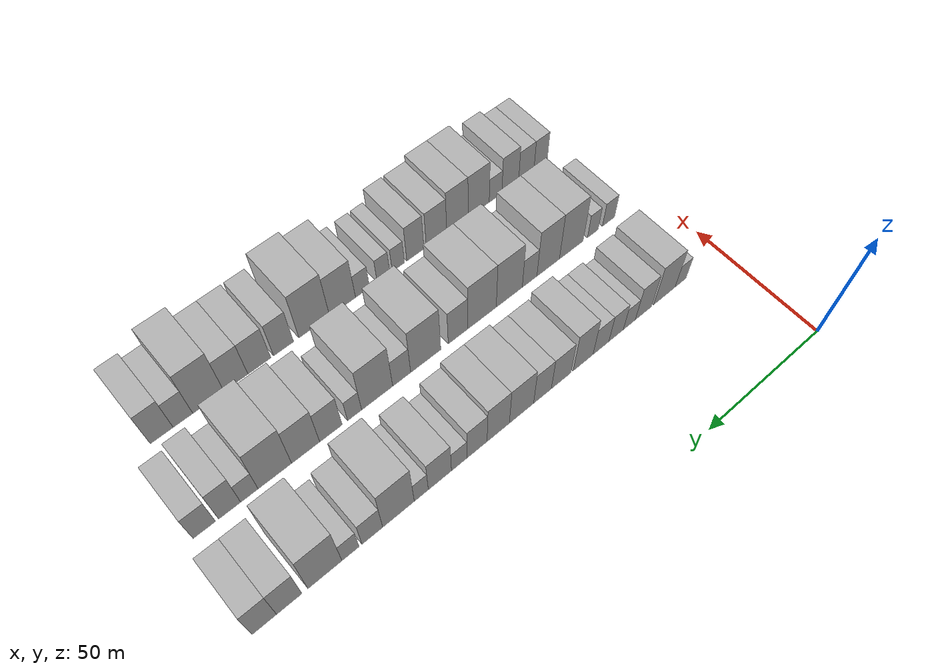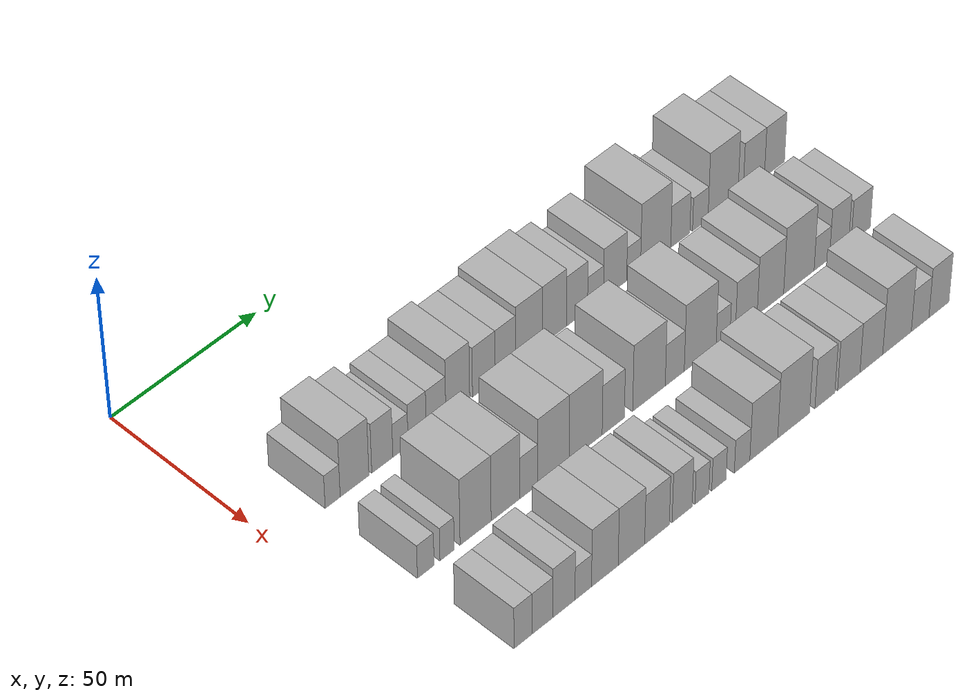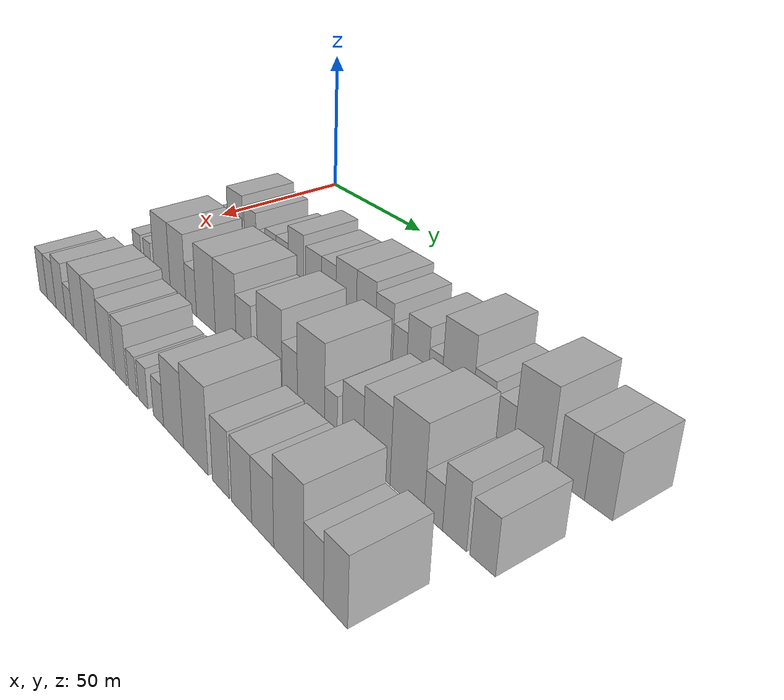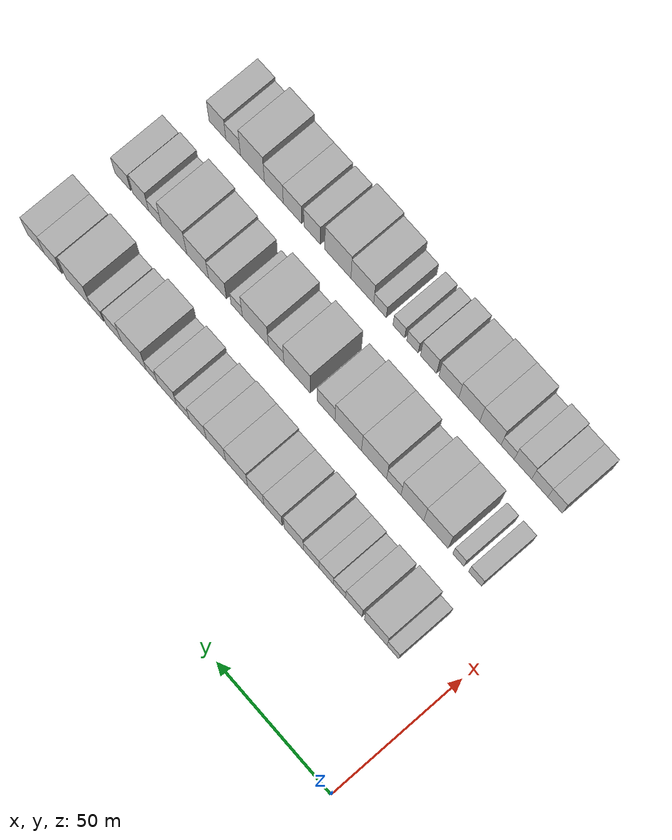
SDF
<sdf version="1.6">
 <world name="default">
  <model name="building_42">
   <static>1</static>
   <pose>50.0000 18.8597 0 0.000000 0.000000 0.000000</pose>
   <link name="link">
    <pose>0 0 6.00 0 0 0</pose>
    <collision name="collision"><geometry><box><size>20.0000 5.1306 12.0000</size></box></geometry></collision>
    <visual name="visual">
     <cast_shadows>0</cast_shadows>
     <geometry><box><size>20.0000 5.1306 12.0000</size></box></geometry>
     <material>
      <script>
       <uri>model://HANNAS_wall/materials/scripts</uri>
       <uri>model://HANNAS_wall/materials/textures</uri>
       <name>vrc/HANNAS_wall</name>
      </script>
     </material>
    </visual>
   </link>
  </model>
  <model name="building_43">
   <static>1</static>
   <pose>50.0000 26.3520 0 0.000000 0.000000 0.000000</pose>
   <link name="link">
    <pose>0 0 10.50 0 0 0</pose>
    <collision name="collision"><geometry><box><size>20.0000 9.8539 21.0000</size></box></geometry></collision>
    <visual name="visual">
     <cast_shadows>0</cast_shadows>
     <geometry><box><size>20.0000 9.8539 21.0000</size></box></geometry>
     <material>
      <script>
       <uri>model://HANNAS_wall/materials/scripts</uri>
       <uri>model://HANNAS_wall/materials/textures</uri>
       <name>vrc/HANNAS_wall</name>
      </script>
     </material>
    </visual>
   </link>
  </model>
  <model name="building_44">
   <static>1</static>
   <pose>50.0000 35.9243 0 0.000000 0.000000 0.000000</pose>
   <link name="link">
    <pose>0 0 9.00 0 0 0</pose>
    <collision name="collision"><geometry><box><size>20.0000 7.2907 18.0000</size></box></geometry></collision>
    <visual name="visual">
     <cast_shadows>0</cast_shadows>
     <geometry><box><size>20.0000 7.2907 18.0000</size></box></geometry>
     <material>
      <script>
       <uri>model://HANNAS_wall/materials/scripts</uri>
       <uri>model://HANNAS_wall/materials/textures</uri>
       <name>vrc/HANNAS_wall</name>
      </script>
     </material>
    </visual>
   </link>
  </model>
  <model name="building_45">
   <static>1</static>
   <pose>50.0000 42.2294 0 0.000000 0.000000 0.000000</pose>
   <link name="link">
    <pose>0 0 6.00 0 0 0</pose>
    <collision name="collision"><geometry><box><size>20.0000 5.3195 12.0000</size></box></geometry></collision>
    <visual name="visual">
     <cast_shadows>0</cast_shadows>
     <geometry><box><size>20.0000 5.3195 12.0000</size></box></geometry>
     <material>
      <script>
       <uri>model://HANNAS_wall/materials/scripts</uri>
       <uri>model://HANNAS_wall/materials/textures</uri>
       <name>vrc/HANNAS_wall</name>
      </script>
     </material>
    </visual>
   </link>
  </model>
  <model name="building_46">
   <static>1</static>
   <pose>50.0000 48.0689 0 0.000000 0.000000 0.000000</pose>
   <link name="link">
    <pose>0 0 7.50 0 0 0</pose>
    <collision name="collision"><geometry><box><size>20.0000 6.3595 15.0000</size></box></geometry></collision>
    <visual name="visual">
     <cast_shadows>0</cast_shadows>
     <geometry><box><size>20.0000 6.3595 15.0000</size></box></geometry>
     <material>
      <script>
       <uri>model://HANNAS_wall/materials/scripts</uri>
       <uri>model://HANNAS_wall/materials/textures</uri>
       <name>vrc/HANNAS_wall</name>
      </script>
     </material>
    </visual>
   </link>
  </model>
  <model name="building_47">
   <static>1</static>
   <pose>50.0000 54.6852 0 0.000000 0.000000 0.000000</pose>
   <link name="link">
    <pose>0 0 7.50 0 0 0</pose>
    <collision name="collision"><geometry><box><size>20.0000 6.8732 15.0000</size></box></geometry></collision>
    <visual name="visual">
     <cast_shadows>0</cast_shadows>
     <geometry><box><size>20.0000 6.8732 15.0000</size></box></geometry>
     <material>
      <script>
       <uri>model://HANNAS_wall/materials/scripts</uri>
       <uri>model://HANNAS_wall/materials/textures</uri>
       <name>vrc/HANNAS_wall</name>
      </script>
     </material>
    </visual>
   </link>
  </model>
  <model name="building_48">
   <static>1</static>
   <pose>50.0000 62.3393 0 0.000000 0.000000 0.000000</pose>
   <link name="link">
    <pose>0 0 10.50 0 0 0</pose>
    <collision name="collision"><geometry><box><size>20.0000 8.4348 21.0000</size></box></geometry></collision>
    <visual name="visual">
     <cast_shadows>0</cast_shadows>
     <geometry><box><size>20.0000 8.4348 21.0000</size></box></geometry>
     <material>
      <script>
       <uri>model://HANNAS_wall/materials/scripts</uri>
       <uri>model://HANNAS_wall/materials/textures</uri>
       <name>vrc/HANNAS_wall</name>
      </script>
     </material>
    </visual>
   </link>
  </model>
  <model name="building_49">
   <static>1</static>
   <pose>50.0000 71.6197 0 0.000000 0.000000 0.000000</pose>
   <link name="link">
    <pose>0 0 9.00 0 0 0</pose>
    <collision name="collision"><geometry><box><size>20.0000 8.1261 18.0000</size></box></geometry></collision>
    <visual name="visual">
     <cast_shadows>0</cast_shadows>
     <geometry><box><size>20.0000 8.1261 18.0000</size></box></geometry>
     <material>
      <script>
       <uri>model://HANNAS_wall/materials/scripts</uri>
       <uri>model://HANNAS_wall/materials/textures</uri>
       <name>vrc/HANNAS_wall</name>
      </script>
     </material>
    </visual>
   </link>
  </model>
  <model name="building_50">
   <static>1</static>
   <pose>50.0000 79.3008 0 0.000000 0.000000 0.000000</pose>
   <link name="link">
    <pose>0 0 9.00 0 0 0</pose>
    <collision name="collision"><geometry><box><size>20.0000 7.2360 18.0000</size></box></geometry></collision>
    <visual name="visual">
     <cast_shadows>0</cast_shadows>
     <geometry><box><size>20.0000 7.2360 18.0000</size></box></geometry>
     <material>
      <script>
       <uri>model://HANNAS_wall/materials/scripts</uri>
       <uri>model://HANNAS_wall/materials/textures</uri>
       <name>vrc/HANNAS_wall</name>
      </script>
     </material>
    </visual>
   </link>
  </model>
  <model name="building_51">
   <static>1</static>
   <pose>50.0000 87.7873 0 0.000000 0.000000 0.000000</pose>
   <link name="link">
    <pose>0 0 10.50 0 0 0</pose>
    <collision name="collision"><geometry><box><size>20.0000 9.7369 21.0000</size></box></geometry></collision>
    <visual name="visual">
     <cast_shadows>0</cast_shadows>
     <geometry><box><size>20.0000 9.7369 21.0000</size></box></geometry>
     <material>
      <script>
       <uri>model://HANNAS_wall/materials/scripts</uri>
       <uri>model://HANNAS_wall/materials/textures</uri>
       <name>vrc/HANNAS_wall</name>
      </script>
     </material>
    </visual>
   </link>
  </model>
  <model name="building_52">
   <static>1</static>
   <pose>50.0000 97.0397 0 0.000000 0.000000 0.000000</pose>
   <link name="link">
    <pose>0 0 10.50 0 0 0</pose>
    <collision name="collision"><geometry><box><size>20.0000 8.7679 21.0000</size></box></geometry></collision>
    <visual name="visual">
     <cast_shadows>0</cast_shadows>
     <geometry><box><size>20.0000 8.7679 21.0000</size></box></geometry>
     <material>
      <script>
       <uri>model://HANNAS_wall/materials/scripts</uri>
       <uri>model://HANNAS_wall/materials/textures</uri>
       <name>vrc/HANNAS_wall</name>
      </script>
     </material>
    </visual>
   </link>
  </model>
  <model name="building_53">
   <static>1</static>
   <pose>50.0000 105.2868 0 0.000000 0.000000 0.000000</pose>
   <link name="link">
    <pose>0 0 9.00 0 0 0</pose>
    <collision name="collision"><geometry><box><size>20.0000 7.7263 18.0000</size></box></geometry></collision>
    <visual name="visual">
     <cast_shadows>0</cast_shadows>
     <geometry><box><size>20.0000 7.7263 18.0000</size></box></geometry>
     <material>
      <script>
       <uri>model://HANNAS_wall/materials/scripts</uri>
       <uri>model://HANNAS_wall/materials/textures</uri>
       <name>vrc/HANNAS_wall</name>
      </script>
     </material>
    </visual>
   </link>
  </model>
  <model name="building_54">
   <static>1</static>
   <pose>50.0000 112.0898 0 0.000000 0.000000 0.000000</pose>
   <link name="link">
    <pose>0 0 6.00 0 0 0</pose>
    <collision name="collision"><geometry><box><size>20.0000 5.8797 12.0000</size></box></geometry></collision>
    <visual name="visual">
     <cast_shadows>0</cast_shadows>
     <geometry><box><size>20.0000 5.8797 12.0000</size></box></geometry>
     <material>
      <script>
       <uri>model://HANNAS_wall/materials/scripts</uri>
       <uri>model://HANNAS_wall/materials/textures</uri>
       <name>vrc/HANNAS_wall</name>
      </script>
     </material>
    </visual>
   </link>
  </model>
  <model name="building_55">
   <static>1</static>
   <pose>50.0000 119.3344 0 0.000000 0.000000 0.000000</pose>
   <link name="link">
    <pose>0 0 9.00 0 0 0</pose>
    <collision name="collision"><geometry><box><size>20.0000 8.6094 18.0000</size></box></geometry></collision>
    <visual name="visual">
     <cast_shadows>0</cast_shadows>
     <geometry><box><size>20.0000 8.6094 18.0000</size></box></geometry>
     <material>
      <script>
       <uri>model://HANNAS_wall/materials/scripts</uri>
       <uri>model://HANNAS_wall/materials/textures</uri>
       <name>vrc/HANNAS_wall</name>
      </script>
     </material>
    </visual>
   </link>
  </model>
  <model name="building_56">
   <static>1</static>
   <pose>50.0000 126.2190 0 0.000000 0.000000 0.000000</pose>
   <link name="link">
    <pose>0 0 6.00 0 0 0</pose>
    <collision name="collision"><geometry><box><size>20.0000 5.1597 12.0000</size></box></geometry></collision>
    <visual name="visual">
     <cast_shadows>0</cast_shadows>
     <geometry><box><size>20.0000 5.1597 12.0000</size></box></geometry>
     <material>
      <script>
       <uri>model://HANNAS_wall/materials/scripts</uri>
       <uri>model://HANNAS_wall/materials/textures</uri>
       <name>vrc/HANNAS_wall</name>
      </script>
     </material>
    </visual>
   </link>
  </model>
  <model name="building_57">
   <static>1</static>
   <pose>50.0000 134.4704 0 0.000000 0.000000 0.000000</pose>
   <link name="link">
    <pose>0 0 12.00 0 0 0</pose>
    <collision name="collision"><geometry><box><size>20.0000 11.3432 24.0000</size></box></geometry></collision>
    <visual name="visual">
     <cast_shadows>0</cast_shadows>
     <geometry><box><size>20.0000 11.3432 24.0000</size></box></geometry>
     <material>
      <script>
       <uri>model://HANNAS_wall/materials/scripts</uri>
       <uri>model://HANNAS_wall/materials/textures</uri>
       <name>vrc/HANNAS_wall</name>
      </script>
     </material>
    </visual>
   </link>
  </model>
  <model name="building_58">
   <static>1</static>
   <pose>50.0000 143.7816 0 0.000000 0.000000 0.000000</pose>
   <link name="link">
    <pose>0 0 7.50 0 0 0</pose>
    <collision name="collision"><geometry><box><size>20.0000 7.2792 15.0000</size></box></geometry></collision>
    <visual name="visual">
     <cast_shadows>0</cast_shadows>
     <geometry><box><size>20.0000 7.2792 15.0000</size></box></geometry>
     <material>
      <script>
       <uri>model://HANNAS_wall/materials/scripts</uri>
       <uri>model://HANNAS_wall/materials/textures</uri>
       <name>vrc/HANNAS_wall</name>
      </script>
     </material>
    </visual>
   </link>
  </model>
  <model name="building_59">
   <static>1</static>
   <pose>50.0000 151.3763 0 0.000000 0.000000 0.000000</pose>
   <link name="link">
    <pose>0 0 6.00 0 0 0</pose>
    <collision name="collision"><geometry><box><size>20.0000 5.9102 12.0000</size></box></geometry></collision>
    <visual name="visual">
     <cast_shadows>0</cast_shadows>
     <geometry><box><size>20.0000 5.9102 12.0000</size></box></geometry>
     <material>
      <script>
       <uri>model://HANNAS_wall/materials/scripts</uri>
       <uri>model://HANNAS_wall/materials/textures</uri>
       <name>vrc/HANNAS_wall</name>
      </script>
     </material>
    </visual>
   </link>
  </model>
  <model name="building_60">
   <static>1</static>
   <pose>50.0000 160.0676 0 0.000000 0.000000 0.000000</pose>
   <link name="link">
    <pose>0 0 12.00 0 0 0</pose>
    <collision name="collision"><geometry><box><size>20.0000 11.4722 24.0000</size></box></geometry></collision>
    <visual name="visual">
     <cast_shadows>0</cast_shadows>
     <geometry><box><size>20.0000 11.4722 24.0000</size></box></geometry>
     <material>
      <script>
       <uri>model://HANNAS_wall/materials/scripts</uri>
       <uri>model://HANNAS_wall/materials/textures</uri>
       <name>vrc/HANNAS_wall</name>
      </script>
     </material>
    </visual>
   </link>
  </model>
  <model name="building_61">
   <static>1</static>
   <pose>50.0000 171.9407 0 0.000000 0.000000 0.000000</pose>
   <link name="link">
    <pose>0 0 9.00 0 0 0</pose>
    <collision name="collision"><geometry><box><size>20.0000 8.2742 18.0000</size></box></geometry></collision>
    <visual name="visual">
     <cast_shadows>0</cast_shadows>
     <geometry><box><size>20.0000 8.2742 18.0000</size></box></geometry>
     <material>
      <script>
       <uri>model://HANNAS_wall/materials/scripts</uri>
       <uri>model://HANNAS_wall/materials/textures</uri>
       <name>vrc/HANNAS_wall</name>
      </script>
     </material>
    </visual>
   </link>
  </model>
  <model name="building_62">
   <static>1</static>
   <pose>50.0000 179.9781 0 0.000000 0.000000 0.000000</pose>
   <link name="link">
    <pose>0 0 9.00 0 0 0</pose>
    <collision name="collision"><geometry><box><size>20.0000 7.8007 18.0000</size></box></geometry></collision>
    <visual name="visual">
     <cast_shadows>0</cast_shadows>
     <geometry><box><size>20.0000 7.8007 18.0000</size></box></geometry>
     <material>
      <script>
       <uri>model://HANNAS_wall/materials/scripts</uri>
       <uri>model://HANNAS_wall/materials/textures</uri>
       <name>vrc/HANNAS_wall</name>
      </script>
     </material>
    </visual>
   </link>
  </model>
  <model name="building_116">
   <static>1</static>
   <pose>82.0000 19.0780 0 0.000000 0.000000 0.000000</pose>
   <link name="link">
    <pose>0 0 6.00 0 0 0</pose>
    <collision name="collision"><geometry><box><size>20.0000 5.6921 12.0000</size></box></geometry></collision>
    <visual name="visual">
     <cast_shadows>0</cast_shadows>
     <geometry><box><size>20.0000 5.6921 12.0000</size></box></geometry>
     <material>
      <script>
       <uri>model://HANNAS_wall/materials/scripts</uri>
       <uri>model://HANNAS_wall/materials/textures</uri>
       <name>vrc/HANNAS_wall</name>
      </script>
     </material>
    </visual>
   </link>
  </model>
  <model name="building_117">
   <static>1</static>
   <pose>82.0000 26.3826 0 0.000000 0.000000 0.000000</pose>
   <link name="link">
    <pose>0 0 6.00 0 0 0</pose>
    <collision name="collision"><geometry><box><size>20.0000 4.9172 12.0000</size></box></geometry></collision>
    <visual name="visual">
     <cast_shadows>0</cast_shadows>
     <geometry><box><size>20.0000 4.9172 12.0000</size></box></geometry>
     <material>
      <script>
       <uri>model://HANNAS_wall/materials/scripts</uri>
       <uri>model://HANNAS_wall/materials/textures</uri>
       <name>vrc/HANNAS_wall</name>
      </script>
     </material>
    </visual>
   </link>
  </model>
  <model name="building_118">
   <static>1</static>
   <pose>82.0000 36.2172 0 0.000000 0.000000 0.000000</pose>
   <link name="link">
    <pose>0 0 12.00 0 0 0</pose>
    <collision name="collision"><geometry><box><size>20.0000 10.7519 24.0000</size></box></geometry></collision>
    <visual name="visual">
     <cast_shadows>0</cast_shadows>
     <geometry><box><size>20.0000 10.7519 24.0000</size></box></geometry>
     <material>
      <script>
       <uri>model://HANNAS_wall/materials/scripts</uri>
       <uri>model://HANNAS_wall/materials/textures</uri>
       <name>vrc/HANNAS_wall</name>
      </script>
     </material>
    </visual>
   </link>
  </model>
  <model name="building_119">
   <static>1</static>
   <pose>82.0000 46.5925 0 0.000000 0.000000 0.000000</pose>
   <link name="link">
    <pose>0 0 12.00 0 0 0</pose>
    <collision name="collision"><geometry><box><size>20.0000 9.9988 24.0000</size></box></geometry></collision>
    <visual name="visual">
     <cast_shadows>0</cast_shadows>
     <geometry><box><size>20.0000 9.9988 24.0000</size></box></geometry>
     <material>
      <script>
       <uri>model://HANNAS_wall/materials/scripts</uri>
       <uri>model://HANNAS_wall/materials/textures</uri>
       <name>vrc/HANNAS_wall</name>
      </script>
     </material>
    </visual>
   </link>
  </model>
  <model name="building_120">
   <static>1</static>
   <pose>82.0000 54.7730 0 0.000000 0.000000 0.000000</pose>
   <link name="link">
    <pose>0 0 7.50 0 0 0</pose>
    <collision name="collision"><geometry><box><size>20.0000 6.3622 15.0000</size></box></geometry></collision>
    <visual name="visual">
     <cast_shadows>0</cast_shadows>
     <geometry><box><size>20.0000 6.3622 15.0000</size></box></geometry>
     <material>
      <script>
       <uri>model://HANNAS_wall/materials/scripts</uri>
       <uri>model://HANNAS_wall/materials/textures</uri>
       <name>vrc/HANNAS_wall</name>
      </script>
     </material>
    </visual>
   </link>
  </model>
  <model name="building_121">
   <static>1</static>
   <pose>82.0000 63.5166 0 0.000000 0.000000 0.000000</pose>
   <link name="link">
    <pose>0 0 12.00 0 0 0</pose>
    <collision name="collision"><geometry><box><size>20.0000 11.1250 24.0000</size></box></geometry></collision>
    <visual name="visual">
     <cast_shadows>0</cast_shadows>
     <geometry><box><size>20.0000 11.1250 24.0000</size></box></geometry>
     <material>
      <script>
       <uri>model://HANNAS_wall/materials/scripts</uri>
       <uri>model://HANNAS_wall/materials/textures</uri>
       <name>vrc/HANNAS_wall</name>
      </script>
     </material>
    </visual>
   </link>
  </model>
  <model name="building_122">
   <static>1</static>
   <pose>82.0000 74.9775 0 0.000000 0.000000 0.000000</pose>
   <link name="link">
    <pose>0 0 12.00 0 0 0</pose>
    <collision name="collision"><geometry><box><size>20.0000 11.7968 24.0000</size></box></geometry></collision>
    <visual name="visual">
     <cast_shadows>0</cast_shadows>
     <geometry><box><size>20.0000 11.7968 24.0000</size></box></geometry>
     <material>
      <script>
       <uri>model://HANNAS_wall/materials/scripts</uri>
       <uri>model://HANNAS_wall/materials/textures</uri>
       <name>vrc/HANNAS_wall</name>
      </script>
     </material>
    </visual>
   </link>
  </model>
  <model name="building_123">
   <static>1</static>
   <pose>82.0000 84.8865 0 0.000000 0.000000 0.000000</pose>
   <link name="link">
    <pose>0 0 9.00 0 0 0</pose>
    <collision name="collision"><geometry><box><size>20.0000 8.0211 18.0000</size></box></geometry></collision>
    <visual name="visual">
     <cast_shadows>0</cast_shadows>
     <geometry><box><size>20.0000 8.0211 18.0000</size></box></geometry>
     <material>
      <script>
       <uri>model://HANNAS_wall/materials/scripts</uri>
       <uri>model://HANNAS_wall/materials/textures</uri>
       <name>vrc/HANNAS_wall</name>
      </script>
     </material>
    </visual>
   </link>
  </model>
  <model name="building_124">
   <static>1</static>
   <pose>82.0000 97.8478 0 0.000000 0.000000 0.000000</pose>
   <link name="link">
    <pose>0 0 12.00 0 0 0</pose>
    <collision name="collision"><geometry><box><size>20.0000 11.9016 24.0000</size></box></geometry></collision>
    <visual name="visual">
     <cast_shadows>0</cast_shadows>
     <geometry><box><size>20.0000 11.9016 24.0000</size></box></geometry>
     <material>
      <script>
       <uri>model://HANNAS_wall/materials/scripts</uri>
       <uri>model://HANNAS_wall/materials/textures</uri>
       <name>vrc/HANNAS_wall</name>
      </script>
     </material>
    </visual>
   </link>
  </model>
  <model name="building_125">
   <static>1</static>
   <pose>82.0000 107.2897 0 0.000000 0.000000 0.000000</pose>
   <link name="link">
    <pose>0 0 7.50 0 0 0</pose>
    <collision name="collision"><geometry><box><size>20.0000 6.9824 15.0000</size></box></geometry></collision>
    <visual name="visual">
     <cast_shadows>0</cast_shadows>
     <geometry><box><size>20.0000 6.9824 15.0000</size></box></geometry>
     <material>
      <script>
       <uri>model://HANNAS_wall/materials/scripts</uri>
       <uri>model://HANNAS_wall/materials/textures</uri>
       <name>vrc/HANNAS_wall</name>
      </script>
     </material>
    </visual>
   </link>
  </model>
  <model name="building_126">
   <static>1</static>
   <pose>82.0000 116.6873 0 0.000000 0.000000 0.000000</pose>
   <link name="link">
    <pose>0 0 12.00 0 0 0</pose>
    <collision name="collision"><geometry><box><size>20.0000 11.8128 24.0000</size></box></geometry></collision>
    <visual name="visual">
     <cast_shadows>0</cast_shadows>
     <geometry><box><size>20.0000 11.8128 24.0000</size></box></geometry>
     <material>
      <script>
       <uri>model://HANNAS_wall/materials/scripts</uri>
       <uri>model://HANNAS_wall/materials/textures</uri>
       <name>vrc/HANNAS_wall</name>
      </script>
     </material>
    </visual>
   </link>
  </model>
  <model name="building_127">
   <static>1</static>
   <pose>82.0000 125.2043 0 0.000000 0.000000 0.000000</pose>
   <link name="link">
    <pose>0 0 6.00 0 0 0</pose>
    <collision name="collision"><geometry><box><size>20.0000 5.2211 12.0000</size></box></geometry></collision>
    <visual name="visual">
     <cast_shadows>0</cast_shadows>
     <geometry><box><size>20.0000 5.2211 12.0000</size></box></geometry>
     <material>
      <script>
       <uri>model://HANNAS_wall/materials/scripts</uri>
       <uri>model://HANNAS_wall/materials/textures</uri>
       <name>vrc/HANNAS_wall</name>
      </script>
     </material>
    </visual>
   </link>
  </model>
  <model name="building_128">
   <static>1</static>
   <pose>82.0000 133.9127 0 0.000000 0.000000 0.000000</pose>
   <link name="link">
    <pose>0 0 9.00 0 0 0</pose>
    <collision name="collision"><geometry><box><size>20.0000 8.1958 18.0000</size></box></geometry></collision>
    <visual name="visual">
     <cast_shadows>0</cast_shadows>
     <geometry><box><size>20.0000 8.1958 18.0000</size></box></geometry>
     <material>
      <script>
       <uri>model://HANNAS_wall/materials/scripts</uri>
       <uri>model://HANNAS_wall/materials/textures</uri>
       <name>vrc/HANNAS_wall</name>
      </script>
     </material>
    </visual>
   </link>
  </model>
  <model name="building_129">
   <static>1</static>
   <pose>82.0000 143.0193 0 0.000000 0.000000 0.000000</pose>
   <link name="link">
    <pose>0 0 10.50 0 0 0</pose>
    <collision name="collision"><geometry><box><size>20.0000 10.0174 21.0000</size></box></geometry></collision>
    <visual name="visual">
     <cast_shadows>0</cast_shadows>
     <geometry><box><size>20.0000 10.0174 21.0000</size></box></geometry>
     <material>
      <script>
       <uri>model://HANNAS_wall/materials/scripts</uri>
       <uri>model://HANNAS_wall/materials/textures</uri>
       <name>vrc/HANNAS_wall</name>
      </script>
     </material>
    </visual>
   </link>
  </model>
  <model name="building_130">
   <static>1</static>
   <pose>82.0000 153.8669 0 0.000000 0.000000 0.000000</pose>
   <link name="link">
    <pose>0 0 12.00 0 0 0</pose>
    <collision name="collision"><geometry><box><size>20.0000 11.6779 24.0000</size></box></geometry></collision>
    <visual name="visual">
     <cast_shadows>0</cast_shadows>
     <geometry><box><size>20.0000 11.6779 24.0000</size></box></geometry>
     <material>
      <script>
       <uri>model://HANNAS_wall/materials/scripts</uri>
       <uri>model://HANNAS_wall/materials/textures</uri>
       <name>vrc/HANNAS_wall</name>
      </script>
     </material>
    </visual>
   </link>
  </model>
  <model name="building_131">
   <static>1</static>
   <pose>82.0000 162.6770 0 0.000000 0.000000 0.000000</pose>
   <link name="link">
    <pose>0 0 6.00 0 0 0</pose>
    <collision name="collision"><geometry><box><size>20.0000 5.9422 12.0000</size></box></geometry></collision>
    <visual name="visual">
     <cast_shadows>0</cast_shadows>
     <geometry><box><size>20.0000 5.9422 12.0000</size></box></geometry>
     <material>
      <script>
       <uri>model://HANNAS_wall/materials/scripts</uri>
       <uri>model://HANNAS_wall/materials/textures</uri>
       <name>vrc/HANNAS_wall</name>
      </script>
     </material>
    </visual>
   </link>
  </model>
  <model name="building_132">
   <static>1</static>
   <pose>82.0000 169.3499 0 0.000000 0.000000 0.000000</pose>
   <link name="link">
    <pose>0 0 9.00 0 0 0</pose>
    <collision name="collision"><geometry><box><size>20.0000 7.4037 18.0000</size></box></geometry></collision>
    <visual name="visual">
     <cast_shadows>0</cast_shadows>
     <geometry><box><size>20.0000 7.4037 18.0000</size></box></geometry>
     <material>
      <script>
       <uri>model://HANNAS_wall/materials/scripts</uri>
       <uri>model://HANNAS_wall/materials/textures</uri>
       <name>vrc/HANNAS_wall</name>
      </script>
     </material>
    </visual>
   </link>
  </model>
  <model name="building_133">
   <static>1</static>
   <pose>82.0000 177.7515 0 0.000000 0.000000 0.000000</pose>
   <link name="link">
    <pose>0 0 7.50 0 0 0</pose>
    <collision name="collision"><geometry><box><size>20.0000 7.3995 15.0000</size></box></geometry></collision>
    <visual name="visual">
     <cast_shadows>0</cast_shadows>
     <geometry><box><size>20.0000 7.3995 15.0000</size></box></geometry>
     <material>
      <script>
       <uri>model://HANNAS_wall/materials/scripts</uri>
       <uri>model://HANNAS_wall/materials/textures</uri>
       <name>vrc/HANNAS_wall</name>
      </script>
     </material>
    </visual>
   </link>
  </model>
  <model name="building_193">
   <static>1</static>
   <pose>114.0000 19.8778 0 0.000000 0.000000 0.000000</pose>
   <link name="link">
    <pose>0 0 7.50 0 0 0</pose>
    <collision name="collision"><geometry><box><size>20.0000 6.2368 15.0000</size></box></geometry></collision>
    <visual name="visual">
     <cast_shadows>0</cast_shadows>
     <geometry><box><size>20.0000 6.2368 15.0000</size></box></geometry>
     <material>
      <script>
       <uri>model://HANNAS_wall/materials/scripts</uri>
       <uri>model://HANNAS_wall/materials/textures</uri>
       <name>vrc/HANNAS_wall</name>
      </script>
     </material>
    </visual>
   </link>
  </model>
  <model name="building_194">
   <static>1</static>
   <pose>114.0000 26.5469 0 0.000000 0.000000 0.000000</pose>
   <link name="link">
    <pose>0 0 7.50 0 0 0</pose>
    <collision name="collision"><geometry><box><size>20.0000 7.1014 15.0000</size></box></geometry></collision>
    <visual name="visual">
     <cast_shadows>0</cast_shadows>
     <geometry><box><size>20.0000 7.1014 15.0000</size></box></geometry>
     <material>
      <script>
       <uri>model://HANNAS_wall/materials/scripts</uri>
       <uri>model://HANNAS_wall/materials/textures</uri>
       <name>vrc/HANNAS_wall</name>
      </script>
     </material>
    </visual>
   </link>
  </model>
  <model name="building_195">
   <static>1</static>
   <pose>114.0000 33.9251 0 0.000000 0.000000 0.000000</pose>
   <link name="link">
    <pose>0 0 9.00 0 0 0</pose>
    <collision name="collision"><geometry><box><size>20.0000 7.6549 18.0000</size></box></geometry></collision>
    <visual name="visual">
     <cast_shadows>0</cast_shadows>
     <geometry><box><size>20.0000 7.6549 18.0000</size></box></geometry>
     <material>
      <script>
       <uri>model://HANNAS_wall/materials/scripts</uri>
       <uri>model://HANNAS_wall/materials/textures</uri>
       <name>vrc/HANNAS_wall</name>
      </script>
     </material>
    </visual>
   </link>
  </model>
  <model name="building_196">
   <static>1</static>
   <pose>114.0000 40.6221 0 0.000000 0.000000 0.000000</pose>
   <link name="link">
    <pose>0 0 6.00 0 0 0</pose>
    <collision name="collision"><geometry><box><size>20.0000 5.7391 12.0000</size></box></geometry></collision>
    <visual name="visual">
     <cast_shadows>0</cast_shadows>
     <geometry><box><size>20.0000 5.7391 12.0000</size></box></geometry>
     <material>
      <script>
       <uri>model://HANNAS_wall/materials/scripts</uri>
       <uri>model://HANNAS_wall/materials/textures</uri>
       <name>vrc/HANNAS_wall</name>
      </script>
     </material>
    </visual>
   </link>
  </model>
  <model name="building_197">
   <static>1</static>
   <pose>114.0000 48.1620 0 0.000000 0.000000 0.000000</pose>
   <link name="link">
    <pose>0 0 10.50 0 0 0</pose>
    <collision name="collision"><geometry><box><size>20.0000 9.3407 21.0000</size></box></geometry></collision>
    <visual name="visual">
     <cast_shadows>0</cast_shadows>
     <geometry><box><size>20.0000 9.3407 21.0000</size></box></geometry>
     <material>
      <script>
       <uri>model://HANNAS_wall/materials/scripts</uri>
       <uri>model://HANNAS_wall/materials/textures</uri>
       <name>vrc/HANNAS_wall</name>
      </script>
     </material>
    </visual>
   </link>
  </model>
  <model name="building_198">
   <static>1</static>
   <pose>114.0000 57.5011 0 0.000000 0.000000 0.000000</pose>
   <link name="link">
    <pose>0 0 10.50 0 0 0</pose>
    <collision name="collision"><geometry><box><size>20.0000 9.3376 21.0000</size></box></geometry></collision>
    <visual name="visual">
     <cast_shadows>0</cast_shadows>
     <geometry><box><size>20.0000 9.3376 21.0000</size></box></geometry>
     <material>
      <script>
       <uri>model://HANNAS_wall/materials/scripts</uri>
       <uri>model://HANNAS_wall/materials/textures</uri>
       <name>vrc/HANNAS_wall</name>
      </script>
     </material>
    </visual>
   </link>
  </model>
  <model name="building_199">
   <static>1</static>
   <pose>114.0000 66.5595 0 0.000000 0.000000 0.000000</pose>
   <link name="link">
    <pose>0 0 9.00 0 0 0</pose>
    <collision name="collision"><geometry><box><size>20.0000 8.7791 18.0000</size></box></geometry></collision>
    <visual name="visual">
     <cast_shadows>0</cast_shadows>
     <geometry><box><size>20.0000 8.7791 18.0000</size></box></geometry>
     <material>
      <script>
       <uri>model://HANNAS_wall/materials/scripts</uri>
       <uri>model://HANNAS_wall/materials/textures</uri>
       <name>vrc/HANNAS_wall</name>
      </script>
     </material>
    </visual>
   </link>
  </model>
  <model name="building_200">
   <static>1</static>
   <pose>114.0000 75.5503 0 0.000000 0.000000 0.000000</pose>
   <link name="link">
    <pose>0 0 9.00 0 0 0</pose>
    <collision name="collision"><geometry><box><size>20.0000 7.2025 18.0000</size></box></geometry></collision>
    <visual name="visual">
     <cast_shadows>0</cast_shadows>
     <geometry><box><size>20.0000 7.2025 18.0000</size></box></geometry>
     <material>
      <script>
       <uri>model://HANNAS_wall/materials/scripts</uri>
       <uri>model://HANNAS_wall/materials/textures</uri>
       <name>vrc/HANNAS_wall</name>
      </script>
     </material>
    </visual>
   </link>
  </model>
  <model name="building_201">
   <static>1</static>
   <pose>114.0000 82.6801 0 0.000000 0.000000 0.000000</pose>
   <link name="link">
    <pose>0 0 6.00 0 0 0</pose>
    <collision name="collision"><geometry><box><size>20.0000 5.0572 12.0000</size></box></geometry></collision>
    <visual name="visual">
     <cast_shadows>0</cast_shadows>
     <geometry><box><size>20.0000 5.0572 12.0000</size></box></geometry>
     <material>
      <script>
       <uri>model://HANNAS_wall/materials/scripts</uri>
       <uri>model://HANNAS_wall/materials/textures</uri>
       <name>vrc/HANNAS_wall</name>
      </script>
     </material>
    </visual>
   </link>
  </model>
  <model name="building_202">
   <static>1</static>
   <pose>114.0000 88.8100 0 0.000000 0.000000 0.000000</pose>
   <link name="link">
    <pose>0 0 6.00 0 0 0</pose>
    <collision name="collision"><geometry><box><size>20.0000 5.2025 12.0000</size></box></geometry></collision>
    <visual name="visual">
     <cast_shadows>0</cast_shadows>
     <geometry><box><size>20.0000 5.2025 12.0000</size></box></geometry>
     <material>
      <script>
       <uri>model://HANNAS_wall/materials/scripts</uri>
       <uri>model://HANNAS_wall/materials/textures</uri>
       <name>vrc/HANNAS_wall</name>
      </script>
     </material>
    </visual>
   </link>
  </model>
  <model name="building_203">
   <static>1</static>
   <pose>114.0000 97.2413 0 0.000000 0.000000 0.000000</pose>
   <link name="link">
    <pose>0 0 6.00 0 0 0</pose>
    <collision name="collision"><geometry><box><size>20.0000 5.6601 12.0000</size></box></geometry></collision>
    <visual name="visual">
     <cast_shadows>0</cast_shadows>
     <geometry><box><size>20.0000 5.6601 12.0000</size></box></geometry>
     <material>
      <script>
       <uri>model://HANNAS_wall/materials/scripts</uri>
       <uri>model://HANNAS_wall/materials/textures</uri>
       <name>vrc/HANNAS_wall</name>
      </script>
     </material>
    </visual>
   </link>
  </model>
  <model name="building_204">
   <static>1</static>
   <pose>114.0000 105.2058 0 0.000000 0.000000 0.000000</pose>
   <link name="link">
    <pose>0 0 10.50 0 0 0</pose>
    <collision name="collision"><geometry><box><size>20.0000 10.2689 21.0000</size></box></geometry></collision>
    <visual name="visual">
     <cast_shadows>0</cast_shadows>
     <geometry><box><size>20.0000 10.2689 21.0000</size></box></geometry>
     <material>
      <script>
       <uri>model://HANNAS_wall/materials/scripts</uri>
       <uri>model://HANNAS_wall/materials/textures</uri>
       <name>vrc/HANNAS_wall</name>
      </script>
     </material>
    </visual>
   </link>
  </model>
  <model name="building_205">
   <static>1</static>
   <pose>114.0000 116.2536 0 0.000000 0.000000 0.000000</pose>
   <link name="link">
    <pose>0 0 12.00 0 0 0</pose>
    <collision name="collision"><geometry><box><size>20.0000 11.8267 24.0000</size></box></geometry></collision>
    <visual name="visual">
     <cast_shadows>0</cast_shadows>
     <geometry><box><size>20.0000 11.8267 24.0000</size></box></geometry>
     <material>
      <script>
       <uri>model://HANNAS_wall/materials/scripts</uri>
       <uri>model://HANNAS_wall/materials/textures</uri>
       <name>vrc/HANNAS_wall</name>
      </script>
     </material>
    </visual>
   </link>
  </model>
  <model name="building_206">
   <static>1</static>
   <pose>114.0000 127.9209 0 0.000000 0.000000 0.000000</pose>
   <link name="link">
    <pose>0 0 9.00 0 0 0</pose>
    <collision name="collision"><geometry><box><size>20.0000 7.5079 18.0000</size></box></geometry></collision>
    <visual name="visual">
     <cast_shadows>0</cast_shadows>
     <geometry><box><size>20.0000 7.5079 18.0000</size></box></geometry>
     <material>
      <script>
       <uri>model://HANNAS_wall/materials/scripts</uri>
       <uri>model://HANNAS_wall/materials/textures</uri>
       <name>vrc/HANNAS_wall</name>
      </script>
     </material>
    </visual>
   </link>
  </model>
  <model name="building_207">
   <static>1</static>
   <pose>114.0000 136.8983 0 0.000000 0.000000 0.000000</pose>
   <link name="link">
    <pose>0 0 9.00 0 0 0</pose>
    <collision name="collision"><geometry><box><size>20.0000 8.4470 18.0000</size></box></geometry></collision>
    <visual name="visual">
     <cast_shadows>0</cast_shadows>
     <geometry><box><size>20.0000 8.4470 18.0000</size></box></geometry>
     <material>
      <script>
       <uri>model://HANNAS_wall/materials/scripts</uri>
       <uri>model://HANNAS_wall/materials/textures</uri>
       <name>vrc/HANNAS_wall</name>
      </script>
     </material>
    </visual>
   </link>
  </model>
  <model name="building_208">
   <static>1</static>
   <pose>114.0000 145.4471 0 0.000000 0.000000 0.000000</pose>
   <link name="link">
    <pose>0 0 9.00 0 0 0</pose>
    <collision name="collision"><geometry><box><size>20.0000 8.6506 18.0000</size></box></geometry></collision>
    <visual name="visual">
     <cast_shadows>0</cast_shadows>
     <geometry><box><size>20.0000 8.6506 18.0000</size></box></geometry>
     <material>
      <script>
       <uri>model://HANNAS_wall/materials/scripts</uri>
       <uri>model://HANNAS_wall/materials/textures</uri>
       <name>vrc/HANNAS_wall</name>
      </script>
     </material>
    </visual>
   </link>
  </model>
  <model name="building_209">
   <static>1</static>
   <pose>114.0000 155.2691 0 0.000000 0.000000 0.000000</pose>
   <link name="link">
    <pose>0 0 12.00 0 0 0</pose>
    <collision name="collision"><geometry><box><size>20.0000 10.9935 24.0000</size></box></geometry></collision>
    <visual name="visual">
     <cast_shadows>0</cast_shadows>
     <geometry><box><size>20.0000 10.9935 24.0000</size></box></geometry>
     <material>
      <script>
       <uri>model://HANNAS_wall/materials/scripts</uri>
       <uri>model://HANNAS_wall/materials/textures</uri>
       <name>vrc/HANNAS_wall</name>
      </script>
     </material>
    </visual>
   </link>
  </model>
  <model name="building_210">
   <static>1</static>
   <pose>114.0000 164.1588 0 0.000000 0.000000 0.000000</pose>
   <link name="link">
    <pose>0 0 7.50 0 0 0</pose>
    <collision name="collision"><geometry><box><size>20.0000 6.7859 15.0000</size></box></geometry></collision>
    <visual name="visual">
     <cast_shadows>0</cast_shadows>
     <geometry><box><size>20.0000 6.7859 15.0000</size></box></geometry>
     <material>
      <script>
       <uri>model://HANNAS_wall/materials/scripts</uri>
       <uri>model://HANNAS_wall/materials/textures</uri>
       <name>vrc/HANNAS_wall</name>
      </script>
     </material>
    </visual>
   </link>
  </model>
  <model name="building_211">
   <static>1</static>
   <pose>114.0000 171.4501 0 0.000000 0.000000 0.000000</pose>
   <link name="link">
    <pose>0 0 9.00 0 0 0</pose>
    <collision name="collision"><geometry><box><size>20.0000 7.7968 18.0000</size></box></geometry></collision>
    <visual name="visual">
     <cast_shadows>0</cast_shadows>
     <geometry><box><size>20.0000 7.7968 18.0000</size></box></geometry>
     <material>
      <script>
       <uri>model://HANNAS_wall/materials/scripts</uri>
       <uri>model://HANNAS_wall/materials/textures</uri>
       <name>vrc/HANNAS_wall</name>
      </script>
     </material>
    </visual>
   </link>
  </model>
 </world>
</sdf>
